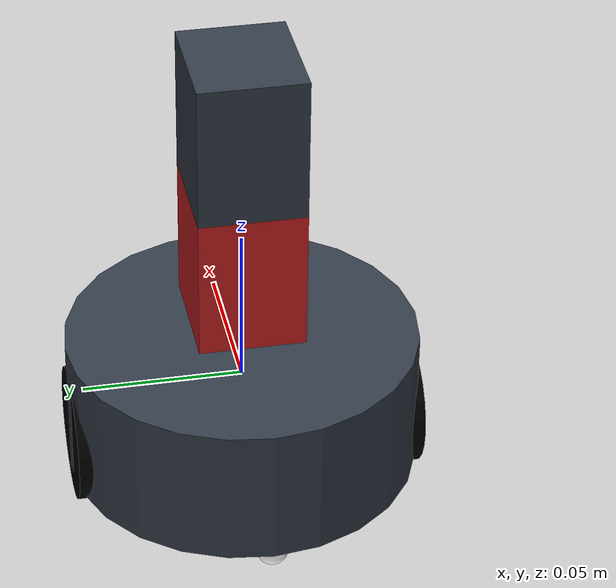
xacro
<?xml version="1.0" ?>

<robot name="alphabot2" xmlns:xacro="https://www.ros.org/wiki/xacro" >
  <xacro:include filename="$(find alphabot2_world)/robots/materials.xacro" />
  <xacro:include filename="$(find alphabot2_world)/robots/gazebo.xacro" />
  <xacro:include filename="$(find alphabot2_world)/robots/wheel_macro.xacro" />
  <xacro:include filename="$(find alphabot2_world)/robots/caster_macro.xacro" />

  <!-- chassis -->
  <link name="link_chassis">
    <!-- pose and inertial -->
    <pose>0 0 0 0 0 0</pose>
    <inertial>
      <mass value="0.145"/>
      <origin rpy="0 0 0" xyz="0 0 0"/>
      <inertia ixx="0.0395416666667" ixy="0" ixz="0" iyy="0.106208333333" iyz="0" izz="0.106208333333"/>
    </inertial>
    <!-- end of pose and inertial -->

    <!-- chassis collision and visual -->
    <collision name="collision_chassis">
      <geometry>
        <cylinder radius="0.055" length="0.045"/>
      </geometry>
    </collision>
    <visual>
      <origin rpy="0 0 0" xyz="0 0 -0.0065"/>
      <geometry>
        <cylinder radius="0.055" length="0.045"/>
      </geometry>
      <material name="blue"/>
    </visual>
    <!-- end of chassis collision and visual -->

    <!-- caster front -->
    <xacro:caster name="caster_front"  origin_xyz="0.05 0 -0.03"  />
    <!-- end of caster front -->

    <!-- caster back -->
    <xacro:caster name="caster_back"  origin_xyz="-0.05 0 -0.03"  />
    <!-- end of caster back -->
  </link>
  <!-- end of chassis -->

  <!-- right wheel -->
  <xacro:link_wheel name="link_right_wheel" />
  <!-- end of right wheel -->

  <!-- joint for right wheel -->
  <xacro:joint_wheel name="joint_right_wheel"  child="link_right_wheel"  origin_xyz="0 0.046 -0.016"  />
  <!-- end of joint for right wheel -->

  <!-- left wheel -->
  <xacro:link_wheel name="link_left_wheel" />
  <!-- end of left wheel -->

  <!-- joint for left wheel -->
  <xacro:joint_wheel name="joint_left_wheel"   child="link_left_wheel"   origin_xyz="0 -0.046 -0.016"  />
  <!-- end of joint for left wheel -->

  <!-- Lower Camera-->
  <link name="lower_camera_link">
    <inertial>
      <mass value="0.0225"/>
      <origin rpy="0 0 0" xyz="0 0 0"/>
      <inertia ixx="0.0000058388" ixy="0" ixz="0" iyy="0.0000063638" iyz="0" izz="0.0000046088"/>
    </inertial>
    <collision name="lower_camera_collision">
      <origin rpy="0 0 0" xyz="0 0 0" />
      <geometry>
        <box size="0.037 0.033 0.045"/>
      </geometry>
    </collision>
    <visual name="lower_camera_visual">
      <origin rpy="0 0 0" xyz="0 0 0"/>
      <geometry>
        <box size="0.037 0.033 0.045"/>
      </geometry>
      <material name="red"/>
    </visual>
  </link>

  <joint name="joint_lower_camera_link" type="continuous"><!--AQUI USAM REVOLUTE -->
    <origin rpy="0 0 0" xyz="0 0 0.045"/>
    <child link="lower_camera_link" />
    <parent link="link_chassis"/>
    <axis rpy="0 0 0" xyz="0 0 1"/>
    <limit effort="30" velocity="1" lower="-1.57" upper="1.57"/>
    <dynamics dampling="2" friction="2"/>
  </joint>

  <gazebo reference="lower_camera_link">
        <material>Gazebo/Yellow</material>
  </gazebo>

  <transmission name="pan_trans">
    <type>transmission_interface/SimpleTransmission</type>
    <joint name="joint_lower_camera_link">
      <hardwareInterface>PositionJointInterface</hardwareInterface>
    </joint>
    <actuator name="camera_pan_motor">
      <mechanicalReduction>1</mechanicalReduction>
    </actuator>
  </transmission>
  <!--End Lower Camera-->

  <!--Upper Camera-->
  <link name="upper_camera_link">
    <origin rpy="0 0 0" xyz="0 0 0"/>
    <inertial>
      <mass value="0.0225"/>
      <origin rpy="0 0 0" xyz="0 0 0 "/>
      <inertia ixx="0.0000058388" ixy="0" ixz="0" iyy="0.0000063638" iyz="0" izz="0.0000046088"/>
    </inertial>
    <collision name="upper_camera_collision">
      <origin rpy="0 0 0" xyz="0 0 0" />
      <geometry>
        <box size="0.037 0.033 0.045"/>
      </geometry>
    </collision>
    <visual name="upper_camera_visual">
      <origin rpy="0 0 0" xyz="0 0 0"/>
      <geometry>
        <box size="0.037 0.033 0.045"/>
      </geometry>
      <material name="blue"/>
    </visual>
  </link>

  <gazebo reference="upper_camera_link">
        <material>Gazebo/Yellow</material>
  </gazebo>

  <joint name="joint_upper_camera_link" type="revolute">
    <origin rpy="0 0 0" xyz="0 0 0.045"/>
    <child link="upper_camera_link" />
    <parent link="lower_camera_link"/>
    <axis rpy="0 0 0" xyz="0 1 0"/>
    <limit effort="30" velocity="1" lower="-1.57" upper="1.57"/>
    <dynamics dampling="2" friction="2"/>
  </joint>

  <transmission name="tilt_trans">
    <type>transmission_interface/SimpleTransmission</type>
    <joint name="joint_upper_camera_link">
      <hardwareInterface>PositionJointInterface</hardwareInterface>
    </joint>
    <actuator name="camera_tilt_motor">
      <mechanicalReduction>1</mechanicalReduction>
    </actuator>
  </transmission>
  <!--End Upper Camera-->

  <!--For all the transmission tags; links gazebo with ROS-->
  <gazebo>
    <plugin name="gazebo_ros_control" filename="libgazebo_ros_control.so">
      <robotNamespace>/alphabot2</robotNamespace>
    </plugin>
  </gazebo>

  <!-- camera -->
  <gazebo reference="upper_camera_link">
    <sensor name="alphabot2_camera" type="camera" >
      <visualize>1</visualize>
      <always_on>1</always_on>
      <update_rate>30.0</update_rate>
      <camera name="alphabot2_camera">
      <origin rpy="0 ${3.14/2} 0" xyz="0.015 0 0.045"/>
        <save enabled="true">
          <path>/tmp/</path>
        </save>
        <horizontal_fov>1.08504</horizontal_fov>
        <image>
          <width>160</width>
          <height>120</height>
          <format>R8G8B8</format>
        </image>
        <clip>
          <near>0.01</near>
          <far>1000</far>
        </clip>
        <noise>
          <type>gaussian</type>
          <!-- Noise is sampled independently per pixel on each frame.
               That pixel's noise value is added to each of its color
               channels, which at that point lie in the range [0,1]. -->
          <mean>0.0</mean>
          <stddev>0.007</stddev>
        </noise>
      </camera>
      <plugin name="camera_controller" filename="libgazebo_ros_camera.so">
        <alwaysOn>true</alwaysOn>
        <updateRate>30.0</updateRate>
        <cameraName>alphabot2_camera/</cameraName>
        <imageTopicName>image_raw</imageTopicName>
        <cameraInfoTopicName>camera_info</cameraInfoTopicName>
        <frameName>camera_link</frameName>
        <hackBaseline>0.07</hackBaseline>
        <distortionK1>0.0</distortionK1>
        <distortionK2>0.0</distortionK2>
        <distortionK3>0.0</distortionK3>
        <distortionT1>0.0</distortionT1>
        <distortionT2>0.0</distortionT2>
      </plugin>
    </sensor>
  </gazebo>
</robot>

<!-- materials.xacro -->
<robot name="alphabot2" xmlns:xacro="https://www.ros.org/wiki/xacro" >
  <material name="black">
    <color rgba="0.0 0.0 0.0 1.0"/>
  </material>
  <material name="blue">
    <color rgba="0.203125 0.23828125 0.28515625 1.0"/>
  </material>
  <material name="green">
    <color rgba="0.0 0.8 0.0 1.0"/>
  </material>
  <material name="grey">
    <color rgba="0.2 0.2 0.2 1.0"/>
  </material>
  <material name="orange">
    <color rgba="1.0 0.423529411765 0.0392156862745 1.0"/>
  </material>
  <material name="brown">
    <color rgba="0.870588235294 0.811764705882 0.764705882353 1.0"/>
  </material>
  <material name="red">
    <color rgba="0.80078125 0.12890625 0.1328125 1.0"/>
  </material>
  <material name="white">
    <color rgba="1.0 1.0 1.0 1.0"/>
  </material>
</robot>

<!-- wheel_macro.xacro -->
<robot xmlns:xacro="http://www.ros.org/wiki/xacro">
  <!-- link wheel -->
  <xacro:macro name="link_wheel" params="name">
    <link name="${name}">
      <inertial>
        <mass value="0.045"/>
        <origin rpy="0 1.5707 1.5707" xyz="0 0 0"/>
        <inertia ixx="0.00052666666" ixy="0" ixz="0" iyy="0.00052666666" iyz="0" izz="0.001"/>
      </inertial>

      <collision name="${name}_collision">
        <origin rpy="0 1.5707 1.5707" xyz="0 0 0" />
        <geometry>
          <cylinder length="0.017" radius="0.021"/>
        </geometry>
      </collision>

      <visual name="${name}_visual">
        <origin rpy="0 1.5707 1.5707" xyz="0 0 0"/>
        <geometry>
            <cylinder length="0.017" radius="0.021"/>
        </geometry>
        <material name="black"/>
      </visual>
    </link>
  </xacro:macro>
  <!-- end of link Wheel -->

  <!-- joint wheel -->
  <xacro:macro name="joint_wheel" params="name child origin_xyz">
    <joint name="${name}" type="continuous">
      <origin rpy="0 0 0" xyz="${origin_xyz}"/>
      <child link="${child}"/>
      <parent link="link_chassis"/>
      <axis rpy="0 0 0" xyz="0 1 0"/>
      <limit effort="10000" velocity="1000"/>
      <joint_properties damping="1.0" friction="1.0" />
    </joint>
  </xacro:macro>
  <!-- end of joint wheel -->
</robot>

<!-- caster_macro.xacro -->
<robot xmlns:xacro="http://www.ros.org/wiki/xacro">

  <!-- caster wheel -->
  <xacro:macro name="caster" params="name origin_xyz">
    <collision name="${name}_collision">
      <origin rpy="0 0 0" xyz="${origin_xyz}"/>
      <geometry>
        <sphere radius="0.005"/>
      </geometry>
      <surface>
        <friction>
          <ode>
            <mu>0</mu>
            <mu2>0</mu2>
            <slip1>1.0</slip1>
            <slip2>1.0</slip2>
          </ode>
        </friction>
      </surface>
    </collision>

    <visual name="${name}_visual">
      <origin rpy="0 0 0" xyz="${origin_xyz}"/>
      <geometry>
        <sphere radius="0.005"/>
      </geometry>
      <material name="white"/>
    </visual>
  </xacro:macro>
  <!-- end of caster wheel -->
</robot>
